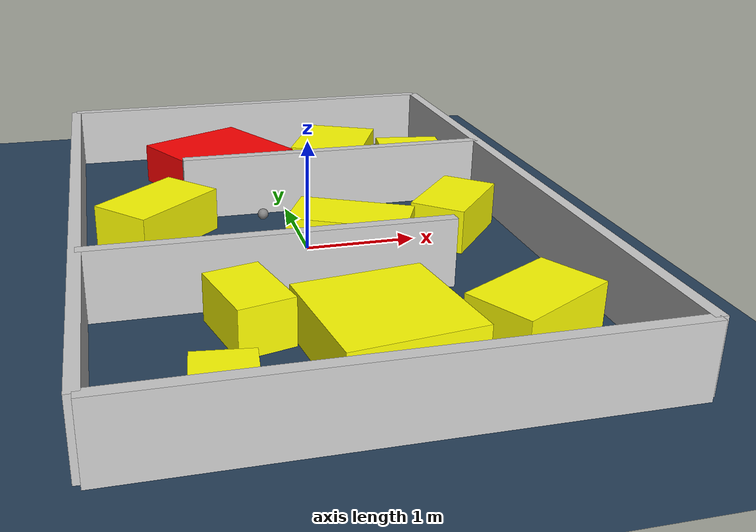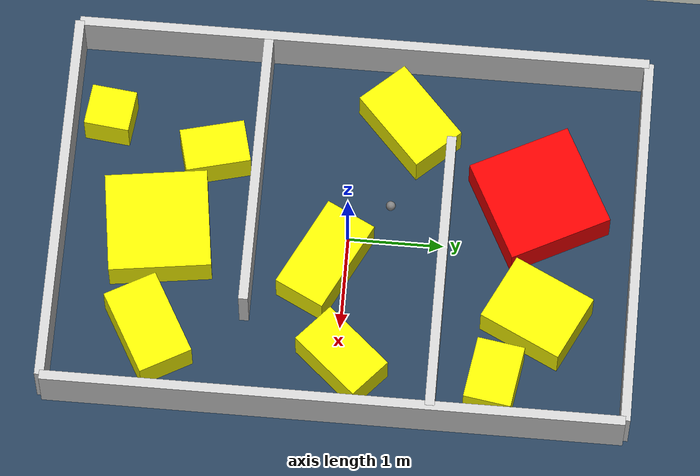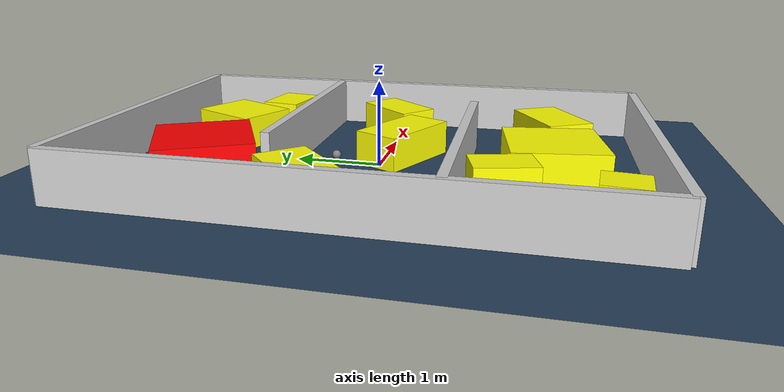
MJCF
<?xml version="1.0" ?>
<mujoco model="generated_environment">
  <option timestep="0.01" integrator="RK4" cone="elliptic"/>
  <default>
    <geom density="1"/>
  </default>
  <asset>
    <texture builtin="gradient" height="3072" rgb1="0.3 0.5 0.7" rgb2="0 0 0" type="skybox" width="512"/>
    <texture builtin="checker" height="300" mark="edge" markrgb="0.8 0.8 0.8" name="groundplane" rgb1="0.2 0.3 0.4" rgb2="0.1 0.2 0.3" type="2d" width="300"/>
    <material name="groundplane" reflectance="0.2" texrepeat="5 5" texture="groundplane" texuniform="true"/>
    <material name="robot" rgba="0.0 1.0 0.0 1"/>
  </asset>
  <worldbody>
    <light dir="0 0 -1" directional="true" pos="0 0 1.5"/>
    <geom condim="4" friction="1.0 0.005 0.001" material="groundplane" name="floor" size="0 0 0.05" type="plane"/>
    <body name="walls">
      <geom name="wall_1" condim="4" pos="-2.0 0.0 0.3" rgba="0.800000011920929 0.800000011920929 0.800000011920929 1.0" size="0.05 3.0 0.3" type="box"/>
      <geom name="wall_2" condim="4" pos="2.0 0.0 0.3" rgba="0.800000011920929 0.800000011920929 0.800000011920929 1.0" size="0.05 3.0 0.3" type="box"/>
      <geom name="wall_3" condim="4" pos="0.0 -3.0 0.3" rgba="0.800000011920929 0.800000011920929 0.800000011920929 1.0" size="2.0 0.05 0.3" type="box"/>
      <geom name="wall_4" condim="4" pos="0.0 3.0 0.3" rgba="0.800000011920929 0.800000011920929 0.800000011920929 1.0" size="2.0 0.05 0.3" type="box"/>
      <geom name="wall_5" condim="4" pos="-0.5 -1.0 0.3" rgba="0.800000011920929 0.800000011920929 0.800000011920929 1.0" size="1.5 0.05 0.3" type="box"/>
      <geom name="wall_6" condim="4" pos="0.5 1.0 0.3" rgba="0.800000011920929 0.800000011920929 0.800000011920929 1.0" size="1.5 0.05 0.3" type="box"/>
    </body>
    <body name="robot">
      <joint name="joint_x" type="slide" pos="0 0 0" axis="1 0 0"/>
      <joint name="joint_y" type="slide" pos="0 0 0" axis="0 1 0"/>
      <geom name="robot" type="sphere" pos="-0.331245892858004 0.41900278535167246 0.2" size="0.05" mass="5." friction="1.0 0.005 0.0001" condim="4"/>
      <site name="sensor_ball"/>
    </body>
    <body name="obstacle_1_static">
      <geom name="obstacle_1_static" condim="4" pos="-0.5279294503596138 1.958279534253462 0.2" euler="0 0 297.25947631150007" friction="1.0 0.005 0.001" rgba="1 0 0 1" size="0.5567571691588615 0.5623625395000935 0.2" type="box"/>
    </body>
    <body name="obstacle_2_movable">
      <geom name="obstacle_2_movable" condim="4" pos="0.34278323879318684 -0.21029775853340826 0.2" euler="0 0 243.25175681162838" friction="1.0 0.005 0.001" rgba="1 1 0 1" size="0.2797829858889318 0.5213957881986561 0.2" type="box" mass="0.1"/>
      <joint type="free"/>
    </body>
    <body name="obstacle_3_movable">
      <geom name="obstacle_3_movable" condim="4" pos="0.11355786561112313 -1.9742800651954608 0.2" euler="0 0 187.8316320776175" friction="1.0 0.005 0.001" rgba="1 1 0 1" size="0.5323643677271144 0.532743312626234 0.2" type="box" mass="0.1"/>
      <joint type="free"/>
    </body>
    <body name="obstacle_4_movable">
      <geom name="obstacle_4_movable" condim="4" pos="-1.2930801585236937 0.5457297749674077 0.2" euler="0 0 312.4842285754531" friction="1.0 0.005 0.001" rgba="1 1 0 1" size="0.3003295096704627 0.48500220114381715 0.2" type="box" mass="0.1"/>
      <joint type="free"/>
    </body>
    <body name="obstacle_5_movable">
      <geom name="obstacle_5_movable" condim="4" pos="0.7552664023561149 2.02060565281976 0.2" euler="0 0 153.88433441249654" friction="1.0 0.005 0.001" rgba="1 1 0 1" size="0.3719292238056321 0.45932603286736257 0.2" type="box" mass="0.1"/>
      <joint type="free"/>
    </body>
    <body name="obstacle_6_movable">
      <geom name="obstacle_6_movable" condim="4" pos="-1.1175559664919659 -2.595275441420789 0.2" euler="0 0 263.48083186991306" friction="1.0 0.005 0.001" rgba="1 1 0 1" size="0.23764361979139814 0.2223116561045287 0.2" type="box" mass="0.1"/>
      <joint type="free"/>
    </body>
    <body name="obstacle_7_movable">
      <geom name="obstacle_7_movable" condim="4" pos="1.2548015497219267 -1.96794598388073 0.2" euler="0 0 209.0970270012855" friction="1.0 0.005 0.001" rgba="1 1 0 1" size="0.46981287473527267 0.2911338600347061 0.2" type="box" mass="0.1"/>
      <joint type="free"/>
    </body>
    <body name="obstacle_8_movable">
      <geom name="obstacle_8_movable" condim="4" pos="1.5030585836660522 1.6290638449094006 0.2" euler="0 0 81.06920192212695" friction="1.0 0.005 0.001" rgba="1 1 0 1" size="0.24938261870075792 0.3318914959503442 0.2" type="box" mass="0.1"/>
      <joint type="free"/>
    </body>
    <body name="obstacle_9_movable">
      <geom name="obstacle_9_movable" condim="4" pos="-0.7804649252612272 -1.4605743060309906 0.2" euler="0 0 194.27211789321132" friction="1.0 0.005 0.001" rgba="1 1 0 1" size="0.23095474556951887 0.34096573335746827 0.2" type="box" mass="0.1"/>
      <joint type="free"/>
    </body>
    <body name="obstacle_10_movable">
      <geom name="obstacle_10_movable" condim="4" pos="1.4002261248422945 0.04992053146855824 0.2" euler="0 0 228.6411307718158" friction="1.0 0.005 0.001" rgba="1 1 0 1" size="0.4276623368173922 0.25041598331775755 0.2" type="box" mass="0.1"/>
      <joint type="free"/>
    </body>
  </worldbody>
  <actuator>
    <motor name="actuator_x" joint="joint_x" gear="1" ctrlrange="-1 1"/>
    <motor name="actuator_y" joint="joint_y" gear="1" ctrlrange="-1 1"/>
  </actuator>
</mujoco>
